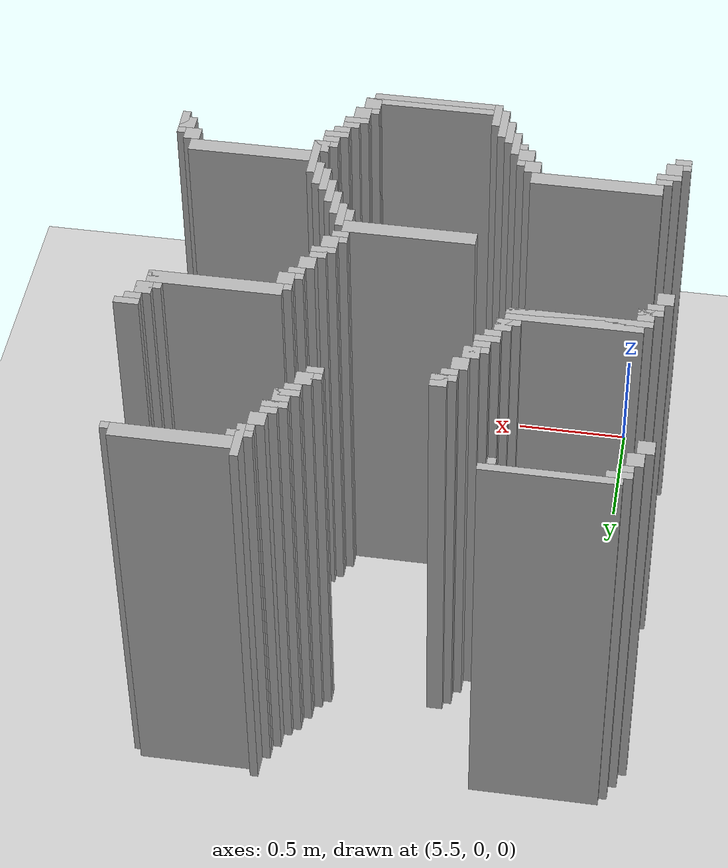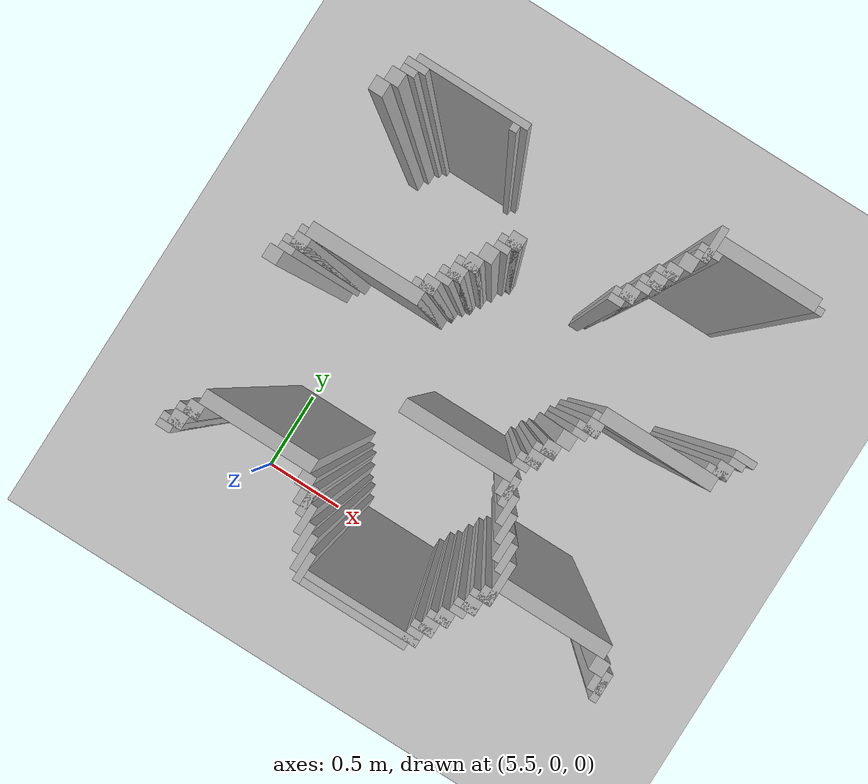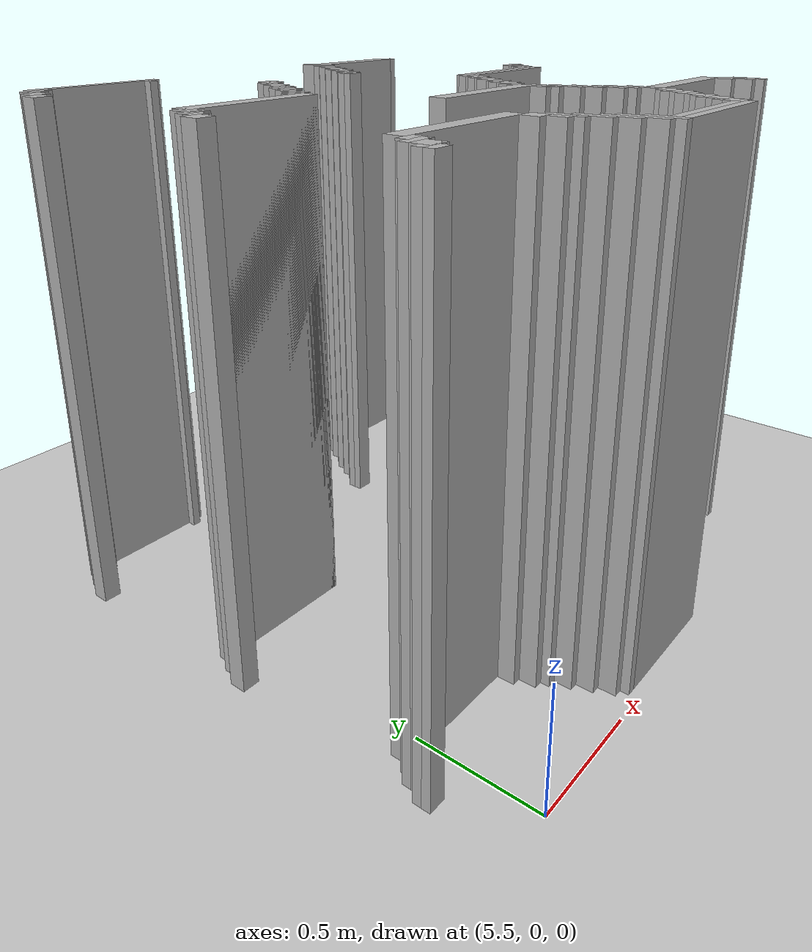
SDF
<sdf version="1.6">
 <world name="slam_world">
  <model name="ground_plane">
   <static>true</static>
   <link name="link">
    <collision name="collision">
     <geometry><plane><normal>0 0 1</normal><size>100 100</size></plane></geometry>
    </collision>
    <visual name="visual">
     <geometry><plane><normal>0 0 1</normal><size>100 100</size></plane></geometry>
     <material>
      <ambient>0.8 0.8 0.8 1</ambient>
      <diffuse>0.8 0.8 0.8 1</diffuse>
      <specular>0.8 0.8 0.8 1</specular>
     </material>
    </visual>
   </link>
  </model>
  <model name="wall_5124">
   <static>true</static>
   <pose>6.8735498839907185 2.1751740139211138 1.0 0 0 0</pose>
   <link name="link">
    <collision name="collision">
     <geometry><box><size>0.03480278422273782 0.17401392111368907 2.0</size></box></geometry>
    </collision>
    <visual name="visual">
     <geometry><box><size>0.03480278422273782 0.17401392111368907 2.0</size></box></geometry>
     <material><ambient>0.5 0.5 0.5 1</ambient><diffuse>0.7 0.7 0.7 1</diffuse></material>
    </visual>
   </link>
  </model>
  <model name="wall_5139">
   <static>true</static>
   <pose>7.134570765661253 2.1925754060324825 1.0 0 0 0</pose>
   <link name="link">
    <collision name="collision">
     <geometry><box><size>0.4872389791183295 0.06960556844547564 2.0</size></box></geometry>
    </collision>
    <visual name="visual">
     <geometry><box><size>0.4872389791183295 0.06960556844547564 2.0</size></box></geometry>
     <material><ambient>0.5 0.5 0.5 1</ambient><diffuse>0.7 0.7 0.7 1</diffuse></material>
    </visual>
   </link>
  </model>
  <model name="wall_5152">
   <static>true</static>
   <pose>5.672853828306264 2.1751740139211138 1.0 0 0 0</pose>
   <link name="link">
    <collision name="collision">
     <geometry><box><size>0.5568445475638051 0.03480278422273782 2.0</size></box></geometry>
    </collision>
    <visual name="visual">
     <geometry><box><size>0.5568445475638051 0.03480278422273782 2.0</size></box></geometry>
     <material><ambient>0.5 0.5 0.5 1</ambient><diffuse>0.7 0.7 0.7 1</diffuse></material>
    </visual>
   </link>
  </model>
  <model name="wall_5153">
   <static>true</static>
   <pose>7.395591647331786 2.1751740139211138 1.0 0 0 0</pose>
   <link name="link">
    <collision name="collision">
     <geometry><box><size>0.03480278422273782 0.03480278422273782 2.0</size></box></geometry>
    </collision>
    <visual name="visual">
     <geometry><box><size>0.03480278422273782 0.03480278422273782 2.0</size></box></geometry>
     <material><ambient>0.5 0.5 0.5 1</ambient><diffuse>0.7 0.7 0.7 1</diffuse></material>
    </visual>
   </link>
  </model>
  <model name="wall_5166">
   <static>true</static>
   <pose>5.41183294663573 2.140371229698376 1.0 0 0 0</pose>
   <link name="link">
    <collision name="collision">
     <geometry><box><size>0.10440835266821345 0.03480278422273782 2.0</size></box></geometry>
    </collision>
    <visual name="visual">
     <geometry><box><size>0.10440835266821345 0.03480278422273782 2.0</size></box></geometry>
     <material><ambient>0.5 0.5 0.5 1</ambient><diffuse>0.7 0.7 0.7 1</diffuse></material>
    </visual>
   </link>
  </model>
  <model name="wall_5167">
   <static>true</static>
   <pose>5.89907192575406 2.140371229698376 1.0 0 0 0</pose>
   <link name="link">
    <collision name="collision">
     <geometry><box><size>0.03480278422273782 0.03480278422273782 2.0</size></box></geometry>
    </collision>
    <visual name="visual">
     <geometry><box><size>0.03480278422273782 0.03480278422273782 2.0</size></box></geometry>
     <material><ambient>0.5 0.5 0.5 1</ambient><diffuse>0.7 0.7 0.7 1</diffuse></material>
    </visual>
   </link>
  </model>
  <model name="wall_5168">
   <static>true</static>
   <pose>6.8735498839907185 2.140371229698376 1.0 0 0 0</pose>
   <link name="link">
    <collision name="collision">
     <geometry><box><size>0.10440835266821345 0.03480278422273782 2.0</size></box></geometry>
    </collision>
    <visual name="visual">
     <geometry><box><size>0.10440835266821345 0.03480278422273782 2.0</size></box></geometry>
     <material><ambient>0.5 0.5 0.5 1</ambient><diffuse>0.7 0.7 0.7 1</diffuse></material>
    </visual>
   </link>
  </model>
  <model name="wall_5183">
   <static>true</static>
   <pose>5.3944315545243615 2.105568445475638 1.0 0 0 0</pose>
   <link name="link">
    <collision name="collision">
     <geometry><box><size>0.06960556844547564 0.03480278422273782 2.0</size></box></geometry>
    </collision>
    <visual name="visual">
     <geometry><box><size>0.06960556844547564 0.03480278422273782 2.0</size></box></geometry>
     <material><ambient>0.5 0.5 0.5 1</ambient><diffuse>0.7 0.7 0.7 1</diffuse></material>
    </visual>
   </link>
  </model>
  <model name="wall_5184">
   <static>true</static>
   <pose>6.85614849187935 2.105568445475638 1.0 0 0 0</pose>
   <link name="link">
    <collision name="collision">
     <geometry><box><size>0.06960556844547564 0.03480278422273782 2.0</size></box></geometry>
    </collision>
    <visual name="visual">
     <geometry><box><size>0.06960556844547564 0.03480278422273782 2.0</size></box></geometry>
     <material><ambient>0.5 0.5 0.5 1</ambient><diffuse>0.7 0.7 0.7 1</diffuse></material>
    </visual>
   </link>
  </model>
  <model name="wall_5198">
   <static>true</static>
   <pose>5.359628770301624 2.053364269141531 1.0 0 0 0</pose>
   <link name="link">
    <collision name="collision">
     <geometry><box><size>0.06960556844547564 0.06960556844547564 2.0</size></box></geometry>
    </collision>
    <visual name="visual">
     <geometry><box><size>0.06960556844547564 0.06960556844547564 2.0</size></box></geometry>
     <material><ambient>0.5 0.5 0.5 1</ambient><diffuse>0.7 0.7 0.7 1</diffuse></material>
    </visual>
   </link>
  </model>
  <model name="wall_5199">
   <static>true</static>
   <pose>6.821345707656612 2.053364269141531 1.0 0 0 0</pose>
   <link name="link">
    <collision name="collision">
     <geometry><box><size>0.06960556844547564 0.06960556844547564 2.0</size></box></geometry>
    </collision>
    <visual name="visual">
     <geometry><box><size>0.06960556844547564 0.06960556844547564 2.0</size></box></geometry>
     <material><ambient>0.5 0.5 0.5 1</ambient><diffuse>0.7 0.7 0.7 1</diffuse></material>
    </visual>
   </link>
  </model>
  <model name="wall_5213">
   <static>true</static>
   <pose>5.324825986078886 1.9837587006960555 1.0 0 0 0</pose>
   <link name="link">
    <collision name="collision">
     <geometry><box><size>0.06960556844547564 0.06960556844547564 2.0</size></box></geometry>
    </collision>
    <visual name="visual">
     <geometry><box><size>0.06960556844547564 0.06960556844547564 2.0</size></box></geometry>
     <material><ambient>0.5 0.5 0.5 1</ambient><diffuse>0.7 0.7 0.7 1</diffuse></material>
    </visual>
   </link>
  </model>
  <model name="wall_5214">
   <static>true</static>
   <pose>6.786542923433874 1.9837587006960555 1.0 0 0 0</pose>
   <link name="link">
    <collision name="collision">
     <geometry><box><size>0.06960556844547564 0.06960556844547564 2.0</size></box></geometry>
    </collision>
    <visual name="visual">
     <geometry><box><size>0.06960556844547564 0.06960556844547564 2.0</size></box></geometry>
     <material><ambient>0.5 0.5 0.5 1</ambient><diffuse>0.7 0.7 0.7 1</diffuse></material>
    </visual>
   </link>
  </model>
  <model name="wall_5229">
   <static>true</static>
   <pose>6.769141531322505 1.9663573085846866 1.0 0 0 0</pose>
   <link name="link">
    <collision name="collision">
     <geometry><box><size>0.10440835266821345 0.03480278422273782 2.0</size></box></geometry>
    </collision>
    <visual name="visual">
     <geometry><box><size>0.10440835266821345 0.03480278422273782 2.0</size></box></geometry>
     <material><ambient>0.5 0.5 0.5 1</ambient><diffuse>0.7 0.7 0.7 1</diffuse></material>
    </visual>
   </link>
  </model>
  <model name="wall_5241">
   <static>true</static>
   <pose>6.751740139211137 1.91415313225058 1.0 0 0 0</pose>
   <link name="link">
    <collision name="collision">
     <geometry><box><size>0.06960556844547564 0.06960556844547564 2.0</size></box></geometry>
    </collision>
    <visual name="visual">
     <geometry><box><size>0.06960556844547564 0.06960556844547564 2.0</size></box></geometry>
     <material><ambient>0.5 0.5 0.5 1</ambient><diffuse>0.7 0.7 0.7 1</diffuse></material>
    </visual>
   </link>
  </model>
  <model name="wall_5254">
   <static>true</static>
   <pose>6.734338747099768 1.896751740139211 1.0 0 0 0</pose>
   <link name="link">
    <collision name="collision">
     <geometry><box><size>0.10440835266821345 0.03480278422273782 2.0</size></box></geometry>
    </collision>
    <visual name="visual">
     <geometry><box><size>0.10440835266821345 0.03480278422273782 2.0</size></box></geometry>
     <material><ambient>0.5 0.5 0.5 1</ambient><diffuse>0.7 0.7 0.7 1</diffuse></material>
    </visual>
   </link>
  </model>
  <model name="wall_5266">
   <static>true</static>
   <pose>6.716937354988398 1.8619489559164732 1.0 0 0 0</pose>
   <link name="link">
    <collision name="collision">
     <geometry><box><size>0.06960556844547564 0.03480278422273782 2.0</size></box></geometry>
    </collision>
    <visual name="visual">
     <geometry><box><size>0.06960556844547564 0.03480278422273782 2.0</size></box></geometry>
     <material><ambient>0.5 0.5 0.5 1</ambient><diffuse>0.7 0.7 0.7 1</diffuse></material>
    </visual>
   </link>
  </model>
  <model name="wall_5278">
   <static>true</static>
   <pose>6.682134570765661 1.8097447795823665 1.0 0 0 0</pose>
   <link name="link">
    <collision name="collision">
     <geometry><box><size>0.06960556844547564 0.06960556844547564 2.0</size></box></geometry>
    </collision>
    <visual name="visual">
     <geometry><box><size>0.06960556844547564 0.06960556844547564 2.0</size></box></geometry>
     <material><ambient>0.5 0.5 0.5 1</ambient><diffuse>0.7 0.7 0.7 1</diffuse></material>
    </visual>
   </link>
  </model>
  <model name="wall_5293">
   <static>true</static>
   <pose>6.664733178654292 1.7923433874709975 1.0 0 0 0</pose>
   <link name="link">
    <collision name="collision">
     <geometry><box><size>0.10440835266821345 0.03480278422273782 2.0</size></box></geometry>
    </collision>
    <visual name="visual">
     <geometry><box><size>0.10440835266821345 0.03480278422273782 2.0</size></box></geometry>
     <material><ambient>0.5 0.5 0.5 1</ambient><diffuse>0.7 0.7 0.7 1</diffuse></material>
    </visual>
   </link>
  </model>
  <model name="wall_5306">
   <static>true</static>
   <pose>6.1600928074245935 1.740139211136891 1.0 0 0 0</pose>
   <link name="link">
    <collision name="collision">
     <geometry><box><size>0.06960556844547564 0.06960556844547564 2.0</size></box></geometry>
    </collision>
    <visual name="visual">
     <geometry><box><size>0.06960556844547564 0.06960556844547564 2.0</size></box></geometry>
     <material><ambient>0.5 0.5 0.5 1</ambient><diffuse>0.7 0.7 0.7 1</diffuse></material>
    </visual>
   </link>
  </model>
  <model name="wall_5307">
   <static>true</static>
   <pose>6.647331786542924 1.75754060324826 1.0 0 0 0</pose>
   <link name="link">
    <collision name="collision">
     <geometry><box><size>0.06960556844547564 0.03480278422273782 2.0</size></box></geometry>
    </collision>
    <visual name="visual">
     <geometry><box><size>0.06960556844547564 0.03480278422273782 2.0</size></box></geometry>
     <material><ambient>0.5 0.5 0.5 1</ambient><diffuse>0.7 0.7 0.7 1</diffuse></material>
    </visual>
   </link>
  </model>
  <model name="wall_5319">
   <static>true</static>
   <pose>6.142691415313225 1.722737819025522 1.0 0 0 0</pose>
   <link name="link">
    <collision name="collision">
     <geometry><box><size>0.10440835266821345 0.03480278422273782 2.0</size></box></geometry>
    </collision>
    <visual name="visual">
     <geometry><box><size>0.10440835266821345 0.03480278422273782 2.0</size></box></geometry>
     <material><ambient>0.5 0.5 0.5 1</ambient><diffuse>0.7 0.7 0.7 1</diffuse></material>
    </visual>
   </link>
  </model>
  <model name="wall_5331">
   <static>true</static>
   <pose>6.125290023201856 1.6879350348027842 1.0 0 0 0</pose>
   <link name="link">
    <collision name="collision">
     <geometry><box><size>0.06960556844547564 0.03480278422273782 2.0</size></box></geometry>
    </collision>
    <visual name="visual">
     <geometry><box><size>0.06960556844547564 0.03480278422273782 2.0</size></box></geometry>
     <material><ambient>0.5 0.5 0.5 1</ambient><diffuse>0.7 0.7 0.7 1</diffuse></material>
    </visual>
   </link>
  </model>
  <model name="wall_5344">
   <static>true</static>
   <pose>6.090487238979118 1.6357308584686774 1.0 0 0 0</pose>
   <link name="link">
    <collision name="collision">
     <geometry><box><size>0.06960556844547564 0.06960556844547564 2.0</size></box></geometry>
    </collision>
    <visual name="visual">
     <geometry><box><size>0.06960556844547564 0.06960556844547564 2.0</size></box></geometry>
     <material><ambient>0.5 0.5 0.5 1</ambient><diffuse>0.7 0.7 0.7 1</diffuse></material>
    </visual>
   </link>
  </model>
  <model name="wall_5357">
   <static>true</static>
   <pose>6.05568445475638 1.5661252900232019 1.0 0 0 0</pose>
   <link name="link">
    <collision name="collision">
     <geometry><box><size>0.06960556844547564 0.06960556844547564 2.0</size></box></geometry>
    </collision>
    <visual name="visual">
     <geometry><box><size>0.06960556844547564 0.06960556844547564 2.0</size></box></geometry>
     <material><ambient>0.5 0.5 0.5 1</ambient><diffuse>0.7 0.7 0.7 1</diffuse></material>
    </visual>
   </link>
  </model>
  <model name="wall_5370">
   <static>true</static>
   <pose>6.038283062645012 1.548723897911833 1.0 0 0 0</pose>
   <link name="link">
    <collision name="collision">
     <geometry><box><size>0.10440835266821345 0.03480278422273782 2.0</size></box></geometry>
    </collision>
    <visual name="visual">
     <geometry><box><size>0.10440835266821345 0.03480278422273782 2.0</size></box></geometry>
     <material><ambient>0.5 0.5 0.5 1</ambient><diffuse>0.7 0.7 0.7 1</diffuse></material>
    </visual>
   </link>
  </model>
  <model name="wall_5381">
   <static>true</static>
   <pose>6.020881670533642 1.4965197215777262 1.0 0 0 0</pose>
   <link name="link">
    <collision name="collision">
     <geometry><box><size>0.06960556844547564 0.06960556844547564 2.0</size></box></geometry>
    </collision>
    <visual name="visual">
     <geometry><box><size>0.06960556844547564 0.06960556844547564 2.0</size></box></geometry>
     <material><ambient>0.5 0.5 0.5 1</ambient><diffuse>0.7 0.7 0.7 1</diffuse></material>
    </visual>
   </link>
  </model>
  <model name="wall_5392">
   <static>true</static>
   <pose>6.003480278422273 1.4791183294663572 1.0 0 0 0</pose>
   <link name="link">
    <collision name="collision">
     <geometry><box><size>0.10440835266821345 0.03480278422273782 2.0</size></box></geometry>
    </collision>
    <visual name="visual">
     <geometry><box><size>0.10440835266821345 0.03480278422273782 2.0</size></box></geometry>
     <material><ambient>0.5 0.5 0.5 1</ambient><diffuse>0.7 0.7 0.7 1</diffuse></material>
    </visual>
   </link>
  </model>
  <model name="wall_5393">
   <static>true</static>
   <pose>7.465197215777262 1.4791183294663572 1.0 0 0 0</pose>
   <link name="link">
    <collision name="collision">
     <geometry><box><size>0.10440835266821345 0.03480278422273782 2.0</size></box></geometry>
    </collision>
    <visual name="visual">
     <geometry><box><size>0.10440835266821345 0.03480278422273782 2.0</size></box></geometry>
     <material><ambient>0.5 0.5 0.5 1</ambient><diffuse>0.7 0.7 0.7 1</diffuse></material>
    </visual>
   </link>
  </model>
  <model name="wall_5403">
   <static>true</static>
   <pose>5.986078886310905 1.4443155452436194 1.0 0 0 0</pose>
   <link name="link">
    <collision name="collision">
     <geometry><box><size>0.06960556844547564 0.03480278422273782 2.0</size></box></geometry>
    </collision>
    <visual name="visual">
     <geometry><box><size>0.06960556844547564 0.03480278422273782 2.0</size></box></geometry>
     <material><ambient>0.5 0.5 0.5 1</ambient><diffuse>0.7 0.7 0.7 1</diffuse></material>
    </visual>
   </link>
  </model>
  <model name="wall_5404">
   <static>true</static>
   <pose>7.447795823665893 1.4443155452436194 1.0 0 0 0</pose>
   <link name="link">
    <collision name="collision">
     <geometry><box><size>0.06960556844547564 0.03480278422273782 2.0</size></box></geometry>
    </collision>
    <visual name="visual">
     <geometry><box><size>0.06960556844547564 0.03480278422273782 2.0</size></box></geometry>
     <material><ambient>0.5 0.5 0.5 1</ambient><diffuse>0.7 0.7 0.7 1</diffuse></material>
    </visual>
   </link>
  </model>
  <model name="wall_5412">
   <static>true</static>
   <pose>5.951276102088166 1.3921113689095126 1.0 0 0 0</pose>
   <link name="link">
    <collision name="collision">
     <geometry><box><size>0.06960556844547564 0.06960556844547564 2.0</size></box></geometry>
    </collision>
    <visual name="visual">
     <geometry><box><size>0.06960556844547564 0.06960556844547564 2.0</size></box></geometry>
     <material><ambient>0.5 0.5 0.5 1</ambient><diffuse>0.7 0.7 0.7 1</diffuse></material>
    </visual>
   </link>
  </model>
  <model name="wall_5413">
   <static>true</static>
   <pose>7.412993039443156 1.3921113689095126 1.0 0 0 0</pose>
   <link name="link">
    <collision name="collision">
     <geometry><box><size>0.06960556844547564 0.06960556844547564 2.0</size></box></geometry>
    </collision>
    <visual name="visual">
     <geometry><box><size>0.06960556844547564 0.06960556844547564 2.0</size></box></geometry>
     <material><ambient>0.5 0.5 0.5 1</ambient><diffuse>0.7 0.7 0.7 1</diffuse></material>
    </visual>
   </link>
  </model>
  <model name="wall_5423">
   <static>true</static>
   <pose>5.933874709976798 1.3747099767981439 1.0 0 0 0</pose>
   <link name="link">
    <collision name="collision">
     <geometry><box><size>0.10440835266821345 0.03480278422273782 2.0</size></box></geometry>
    </collision>
    <visual name="visual">
     <geometry><box><size>0.10440835266821345 0.03480278422273782 2.0</size></box></geometry>
     <material><ambient>0.5 0.5 0.5 1</ambient><diffuse>0.7 0.7 0.7 1</diffuse></material>
    </visual>
   </link>
  </model>
  <model name="wall_5424">
   <static>true</static>
   <pose>7.395591647331786 1.3747099767981439 1.0 0 0 0</pose>
   <link name="link">
    <collision name="collision">
     <geometry><box><size>0.10440835266821345 0.03480278422273782 2.0</size></box></geometry>
    </collision>
    <visual name="visual">
     <geometry><box><size>0.10440835266821345 0.03480278422273782 2.0</size></box></geometry>
     <material><ambient>0.5 0.5 0.5 1</ambient><diffuse>0.7 0.7 0.7 1</diffuse></material>
    </visual>
   </link>
  </model>
  <model name="wall_5435">
   <static>true</static>
   <pose>5.672853828306264 1.322505800464037 1.0 0 0 0</pose>
   <link name="link">
    <collision name="collision">
     <geometry><box><size>0.5568445475638051 0.06960556844547564 2.0</size></box></geometry>
    </collision>
    <visual name="visual">
     <geometry><box><size>0.5568445475638051 0.06960556844547564 2.0</size></box></geometry>
     <material><ambient>0.5 0.5 0.5 1</ambient><diffuse>0.7 0.7 0.7 1</diffuse></material>
    </visual>
   </link>
  </model>
  <model name="wall_5436">
   <static>true</static>
   <pose>7.134570765661253 1.322505800464037 1.0 0 0 0</pose>
   <link name="link">
    <collision name="collision">
     <geometry><box><size>0.5568445475638051 0.06960556844547564 2.0</size></box></geometry>
    </collision>
    <visual name="visual">
     <geometry><box><size>0.5568445475638051 0.06960556844547564 2.0</size></box></geometry>
     <material><ambient>0.5 0.5 0.5 1</ambient><diffuse>0.7 0.7 0.7 1</diffuse></material>
    </visual>
   </link>
  </model>
  <model name="wall_5447">
   <static>true</static>
   <pose>5.655452436194896 1.3051044083526682 1.0 0 0 0</pose>
   <link name="link">
    <collision name="collision">
     <geometry><box><size>0.5916473317865429 0.03480278422273782 2.0</size></box></geometry>
    </collision>
    <visual name="visual">
     <geometry><box><size>0.5916473317865429 0.03480278422273782 2.0</size></box></geometry>
     <material><ambient>0.5 0.5 0.5 1</ambient><diffuse>0.7 0.7 0.7 1</diffuse></material>
    </visual>
   </link>
  </model>
  <model name="wall_5448">
   <static>true</static>
   <pose>7.117169373549884 1.3051044083526682 1.0 0 0 0</pose>
   <link name="link">
    <collision name="collision">
     <geometry><box><size>0.5916473317865429 0.03480278422273782 2.0</size></box></geometry>
    </collision>
    <visual name="visual">
     <geometry><box><size>0.5916473317865429 0.03480278422273782 2.0</size></box></geometry>
     <material><ambient>0.5 0.5 0.5 1</ambient><diffuse>0.7 0.7 0.7 1</diffuse></material>
    </visual>
   </link>
  </model>
  <model name="wall_5461">
   <static>true</static>
   <pose>5.3944315545243615 1.2529002320185614 1.0 0 0 0</pose>
   <link name="link">
    <collision name="collision">
     <geometry><box><size>0.06960556844547564 0.06960556844547564 2.0</size></box></geometry>
    </collision>
    <visual name="visual">
     <geometry><box><size>0.06960556844547564 0.06960556844547564 2.0</size></box></geometry>
     <material><ambient>0.5 0.5 0.5 1</ambient><diffuse>0.7 0.7 0.7 1</diffuse></material>
    </visual>
   </link>
  </model>
  <model name="wall_5462">
   <static>true</static>
   <pose>6.85614849187935 1.2529002320185614 1.0 0 0 0</pose>
   <link name="link">
    <collision name="collision">
     <geometry><box><size>0.06960556844547564 0.06960556844547564 2.0</size></box></geometry>
    </collision>
    <visual name="visual">
     <geometry><box><size>0.06960556844547564 0.06960556844547564 2.0</size></box></geometry>
     <material><ambient>0.5 0.5 0.5 1</ambient><diffuse>0.7 0.7 0.7 1</diffuse></material>
    </visual>
   </link>
  </model>
  <model name="wall_5476">
   <static>true</static>
   <pose>5.377030162412993 1.2354988399071924 1.0 0 0 0</pose>
   <link name="link">
    <collision name="collision">
     <geometry><box><size>0.10440835266821345 0.03480278422273782 2.0</size></box></geometry>
    </collision>
    <visual name="visual">
     <geometry><box><size>0.10440835266821345 0.03480278422273782 2.0</size></box></geometry>
     <material><ambient>0.5 0.5 0.5 1</ambient><diffuse>0.7 0.7 0.7 1</diffuse></material>
    </visual>
   </link>
  </model>
  <model name="wall_5477">
   <static>true</static>
   <pose>6.838747099767981 1.2354988399071924 1.0 0 0 0</pose>
   <link name="link">
    <collision name="collision">
     <geometry><box><size>0.10440835266821345 0.03480278422273782 2.0</size></box></geometry>
    </collision>
    <visual name="visual">
     <geometry><box><size>0.10440835266821345 0.03480278422273782 2.0</size></box></geometry>
     <material><ambient>0.5 0.5 0.5 1</ambient><diffuse>0.7 0.7 0.7 1</diffuse></material>
    </visual>
   </link>
  </model>
  <model name="wall_5490">
   <static>true</static>
   <pose>5.359628770301624 1.2006960556844548 1.0 0 0 0</pose>
   <link name="link">
    <collision name="collision">
     <geometry><box><size>0.06960556844547564 0.03480278422273782 2.0</size></box></geometry>
    </collision>
    <visual name="visual">
     <geometry><box><size>0.06960556844547564 0.03480278422273782 2.0</size></box></geometry>
     <material><ambient>0.5 0.5 0.5 1</ambient><diffuse>0.7 0.7 0.7 1</diffuse></material>
    </visual>
   </link>
  </model>
  <model name="wall_5491">
   <static>true</static>
   <pose>6.821345707656612 1.2006960556844548 1.0 0 0 0</pose>
   <link name="link">
    <collision name="collision">
     <geometry><box><size>0.06960556844547564 0.03480278422273782 2.0</size></box></geometry>
    </collision>
    <visual name="visual">
     <geometry><box><size>0.06960556844547564 0.03480278422273782 2.0</size></box></geometry>
     <material><ambient>0.5 0.5 0.5 1</ambient><diffuse>0.7 0.7 0.7 1</diffuse></material>
    </visual>
   </link>
  </model>
  <model name="wall_5503">
   <static>true</static>
   <pose>5.324825986078886 1.148491879350348 1.0 0 0 0</pose>
   <link name="link">
    <collision name="collision">
     <geometry><box><size>0.06960556844547564 0.06960556844547564 2.0</size></box></geometry>
    </collision>
    <visual name="visual">
     <geometry><box><size>0.06960556844547564 0.06960556844547564 2.0</size></box></geometry>
     <material><ambient>0.5 0.5 0.5 1</ambient><diffuse>0.7 0.7 0.7 1</diffuse></material>
    </visual>
   </link>
  </model>
  <model name="wall_5504">
   <static>true</static>
   <pose>6.786542923433874 1.148491879350348 1.0 0 0 0</pose>
   <link name="link">
    <collision name="collision">
     <geometry><box><size>0.06960556844547564 0.06960556844547564 2.0</size></box></geometry>
    </collision>
    <visual name="visual">
     <geometry><box><size>0.06960556844547564 0.06960556844547564 2.0</size></box></geometry>
     <material><ambient>0.5 0.5 0.5 1</ambient><diffuse>0.7 0.7 0.7 1</diffuse></material>
    </visual>
   </link>
  </model>
  <model name="wall_5519">
   <static>true</static>
   <pose>6.751740139211137 1.0788863109048723 1.0 0 0 0</pose>
   <link name="link">
    <collision name="collision">
     <geometry><box><size>0.06960556844547564 0.06960556844547564 2.0</size></box></geometry>
    </collision>
    <visual name="visual">
     <geometry><box><size>0.06960556844547564 0.06960556844547564 2.0</size></box></geometry>
     <material><ambient>0.5 0.5 0.5 1</ambient><diffuse>0.7 0.7 0.7 1</diffuse></material>
    </visual>
   </link>
  </model>
  <model name="wall_5534">
   <static>true</static>
   <pose>6.734338747099768 1.0614849187935034 1.0 0 0 0</pose>
   <link name="link">
    <collision name="collision">
     <geometry><box><size>0.10440835266821345 0.03480278422273782 2.0</size></box></geometry>
    </collision>
    <visual name="visual">
     <geometry><box><size>0.10440835266821345 0.03480278422273782 2.0</size></box></geometry>
     <material><ambient>0.5 0.5 0.5 1</ambient><diffuse>0.7 0.7 0.7 1</diffuse></material>
    </visual>
   </link>
  </model>
  <model name="wall_5546">
   <static>true</static>
   <pose>6.716937354988398 1.0092807424593968 1.0 0 0 0</pose>
   <link name="link">
    <collision name="collision">
     <geometry><box><size>0.06960556844547564 0.06960556844547564 2.0</size></box></geometry>
    </collision>
    <visual name="visual">
     <geometry><box><size>0.06960556844547564 0.06960556844547564 2.0</size></box></geometry>
     <material><ambient>0.5 0.5 0.5 1</ambient><diffuse>0.7 0.7 0.7 1</diffuse></material>
    </visual>
   </link>
  </model>
  <model name="wall_5558">
   <static>true</static>
   <pose>6.69953596287703 0.9918793503480278 1.0 0 0 0</pose>
   <link name="link">
    <collision name="collision">
     <geometry><box><size>0.10440835266821345 0.03480278422273782 2.0</size></box></geometry>
    </collision>
    <visual name="visual">
     <geometry><box><size>0.10440835266821345 0.03480278422273782 2.0</size></box></geometry>
     <material><ambient>0.5 0.5 0.5 1</ambient><diffuse>0.7 0.7 0.7 1</diffuse></material>
    </visual>
   </link>
  </model>
  <model name="wall_5570">
   <static>true</static>
   <pose>6.682134570765661 0.95707656612529 1.0 0 0 0</pose>
   <link name="link">
    <collision name="collision">
     <geometry><box><size>0.06960556844547564 0.03480278422273782 2.0</size></box></geometry>
    </collision>
    <visual name="visual">
     <geometry><box><size>0.06960556844547564 0.03480278422273782 2.0</size></box></geometry>
     <material><ambient>0.5 0.5 0.5 1</ambient><diffuse>0.7 0.7 0.7 1</diffuse></material>
    </visual>
   </link>
  </model>
  <model name="wall_5580">
   <static>true</static>
   <pose>6.403712296983758 0.9048723897911832 1.0 0 0 0</pose>
   <link name="link">
    <collision name="collision">
     <geometry><box><size>0.5568445475638051 0.06960556844547564 2.0</size></box></geometry>
    </collision>
    <visual name="visual">
     <geometry><box><size>0.5568445475638051 0.06960556844547564 2.0</size></box></geometry>
     <material><ambient>0.5 0.5 0.5 1</ambient><diffuse>0.7 0.7 0.7 1</diffuse></material>
    </visual>
   </link>
  </model>
  <model name="wall_5590">
   <static>true</static>
   <pose>6.69953596287703 0.8352668213457076 1.0 0 0 0</pose>
   <link name="link">
    <collision name="collision">
     <geometry><box><size>0.03480278422273782 0.13921113689095127 2.0</size></box></geometry>
    </collision>
    <visual name="visual">
     <geometry><box><size>0.03480278422273782 0.13921113689095127 2.0</size></box></geometry>
     <material><ambient>0.5 0.5 0.5 1</ambient><diffuse>0.7 0.7 0.7 1</diffuse></material>
    </visual>
   </link>
  </model>
  <model name="wall_5597">
   <static>true</static>
   <pose>6.682134570765661 0.8352668213457076 1.0 0 0 0</pose>
   <link name="link">
    <collision name="collision">
     <geometry><box><size>0.06960556844547564 0.06960556844547564 2.0</size></box></geometry>
    </collision>
    <visual name="visual">
     <geometry><box><size>0.06960556844547564 0.06960556844547564 2.0</size></box></geometry>
     <material><ambient>0.5 0.5 0.5 1</ambient><diffuse>0.7 0.7 0.7 1</diffuse></material>
    </visual>
   </link>
  </model>
  <model name="wall_5604">
   <static>true</static>
   <pose>6.734338747099768 0.765661252900232 1.0 0 0 0</pose>
   <link name="link">
    <collision name="collision">
     <geometry><box><size>0.03480278422273782 0.13921113689095127 2.0</size></box></geometry>
    </collision>
    <visual name="visual">
     <geometry><box><size>0.03480278422273782 0.13921113689095127 2.0</size></box></geometry>
     <material><ambient>0.5 0.5 0.5 1</ambient><diffuse>0.7 0.7 0.7 1</diffuse></material>
    </visual>
   </link>
  </model>
  <model name="wall_5615">
   <static>true</static>
   <pose>6.769141531322505 0.6960556844547563 1.0 0 0 0</pose>
   <link name="link">
    <collision name="collision">
     <geometry><box><size>0.03480278422273782 0.13921113689095127 2.0</size></box></geometry>
    </collision>
    <visual name="visual">
     <geometry><box><size>0.03480278422273782 0.13921113689095127 2.0</size></box></geometry>
     <material><ambient>0.5 0.5 0.5 1</ambient><diffuse>0.7 0.7 0.7 1</diffuse></material>
    </visual>
   </link>
  </model>
  <model name="wall_5622">
   <static>true</static>
   <pose>6.803944315545244 0.6264501160092807 1.0 0 0 0</pose>
   <link name="link">
    <collision name="collision">
     <geometry><box><size>0.03480278422273782 0.13921113689095127 2.0</size></box></geometry>
    </collision>
    <visual name="visual">
     <geometry><box><size>0.03480278422273782 0.13921113689095127 2.0</size></box></geometry>
     <material><ambient>0.5 0.5 0.5 1</ambient><diffuse>0.7 0.7 0.7 1</diffuse></material>
    </visual>
   </link>
  </model>
  <model name="wall_5629">
   <static>true</static>
   <pose>6.838747099767981 0.5916473317865429 1.0 0 0 0</pose>
   <link name="link">
    <collision name="collision">
     <geometry><box><size>0.03480278422273782 0.13921113689095127 2.0</size></box></geometry>
    </collision>
    <visual name="visual">
     <geometry><box><size>0.03480278422273782 0.13921113689095127 2.0</size></box></geometry>
     <material><ambient>0.5 0.5 0.5 1</ambient><diffuse>0.7 0.7 0.7 1</diffuse></material>
    </visual>
   </link>
  </model>
  <model name="wall_5640">
   <static>true</static>
   <pose>6.8735498839907185 0.4872389791183295 1.0 0 0 0</pose>
   <link name="link">
    <collision name="collision">
     <geometry><box><size>0.03480278422273782 0.2088167053364269 2.0</size></box></geometry>
    </collision>
    <visual name="visual">
     <geometry><box><size>0.03480278422273782 0.2088167053364269 2.0</size></box></geometry>
     <material><ambient>0.5 0.5 0.5 1</ambient><diffuse>0.7 0.7 0.7 1</diffuse></material>
    </visual>
   </link>
  </model>
  <model name="wall_5653">
   <static>true</static>
   <pose>5.672853828306264 0.4872389791183295 1.0 0 0 0</pose>
   <link name="link">
    <collision name="collision">
     <geometry><box><size>0.5568445475638051 0.06960556844547564 2.0</size></box></geometry>
    </collision>
    <visual name="visual">
     <geometry><box><size>0.5568445475638051 0.06960556844547564 2.0</size></box></geometry>
     <material><ambient>0.5 0.5 0.5 1</ambient><diffuse>0.7 0.7 0.7 1</diffuse></material>
    </visual>
   </link>
  </model>
  <model name="wall_5654">
   <static>true</static>
   <pose>7.151972157772621 0.4872389791183295 1.0 0 0 0</pose>
   <link name="link">
    <collision name="collision">
     <geometry><box><size>0.5220417633410672 0.06960556844547564 2.0</size></box></geometry>
    </collision>
    <visual name="visual">
     <geometry><box><size>0.5220417633410672 0.06960556844547564 2.0</size></box></geometry>
     <material><ambient>0.5 0.5 0.5 1</ambient><diffuse>0.7 0.7 0.7 1</diffuse></material>
    </visual>
   </link>
  </model>
  <model name="wall_5667">
   <static>true</static>
   <pose>5.3944315545243615 0.4176334106728538 1.0 0 0 0</pose>
   <link name="link">
    <collision name="collision">
     <geometry><box><size>0.06960556844547564 0.06960556844547564 2.0</size></box></geometry>
    </collision>
    <visual name="visual">
     <geometry><box><size>0.06960556844547564 0.06960556844547564 2.0</size></box></geometry>
     <material><ambient>0.5 0.5 0.5 1</ambient><diffuse>0.7 0.7 0.7 1</diffuse></material>
    </visual>
   </link>
  </model>
  <model name="wall_5668">
   <static>true</static>
   <pose>5.951276102088166 0.4176334106728538 1.0 0 0 0</pose>
   <link name="link">
    <collision name="collision">
     <geometry><box><size>0.06960556844547564 0.06960556844547564 2.0</size></box></geometry>
    </collision>
    <visual name="visual">
     <geometry><box><size>0.06960556844547564 0.06960556844547564 2.0</size></box></geometry>
     <material><ambient>0.5 0.5 0.5 1</ambient><diffuse>0.7 0.7 0.7 1</diffuse></material>
    </visual>
   </link>
  </model>
  <model name="wall_5669">
   <static>true</static>
   <pose>6.85614849187935 0.4176334106728538 1.0 0 0 0</pose>
   <link name="link">
    <collision name="collision">
     <geometry><box><size>0.06960556844547564 0.06960556844547564 2.0</size></box></geometry>
    </collision>
    <visual name="visual">
     <geometry><box><size>0.06960556844547564 0.06960556844547564 2.0</size></box></geometry>
     <material><ambient>0.5 0.5 0.5 1</ambient><diffuse>0.7 0.7 0.7 1</diffuse></material>
    </visual>
   </link>
  </model>
  <model name="wall_5670">
   <static>true</static>
   <pose>7.412993039443156 0.4176334106728538 1.0 0 0 0</pose>
   <link name="link">
    <collision name="collision">
     <geometry><box><size>0.06960556844547564 0.06960556844547564 2.0</size></box></geometry>
    </collision>
    <visual name="visual">
     <geometry><box><size>0.06960556844547564 0.06960556844547564 2.0</size></box></geometry>
     <material><ambient>0.5 0.5 0.5 1</ambient><diffuse>0.7 0.7 0.7 1</diffuse></material>
    </visual>
   </link>
  </model>
  <model name="wall_5687">
   <static>true</static>
   <pose>5.377030162412993 0.4002320185614849 1.0 0 0 0</pose>
   <link name="link">
    <collision name="collision">
     <geometry><box><size>0.10440835266821345 0.03480278422273782 2.0</size></box></geometry>
    </collision>
    <visual name="visual">
     <geometry><box><size>0.10440835266821345 0.03480278422273782 2.0</size></box></geometry>
     <material><ambient>0.5 0.5 0.5 1</ambient><diffuse>0.7 0.7 0.7 1</diffuse></material>
    </visual>
   </link>
  </model>
  <model name="wall_5688">
   <static>true</static>
   <pose>6.003480278422273 0.34802784222737815 1.0 0 0 0</pose>
   <link name="link">
    <collision name="collision">
     <geometry><box><size>0.03480278422273782 0.13921113689095127 2.0</size></box></geometry>
    </collision>
    <visual name="visual">
     <geometry><box><size>0.03480278422273782 0.13921113689095127 2.0</size></box></geometry>
     <material><ambient>0.5 0.5 0.5 1</ambient><diffuse>0.7 0.7 0.7 1</diffuse></material>
    </visual>
   </link>
  </model>
  <model name="wall_5689">
   <static>true</static>
   <pose>6.838747099767981 0.4002320185614849 1.0 0 0 0</pose>
   <link name="link">
    <collision name="collision">
     <geometry><box><size>0.10440835266821345 0.03480278422273782 2.0</size></box></geometry>
    </collision>
    <visual name="visual">
     <geometry><box><size>0.10440835266821345 0.03480278422273782 2.0</size></box></geometry>
     <material><ambient>0.5 0.5 0.5 1</ambient><diffuse>0.7 0.7 0.7 1</diffuse></material>
    </visual>
   </link>
  </model>
  <model name="wall_5690">
   <static>true</static>
   <pose>7.465197215777262 0.34802784222737815 1.0 0 0 0</pose>
   <link name="link">
    <collision name="collision">
     <geometry><box><size>0.03480278422273782 0.13921113689095127 2.0</size></box></geometry>
    </collision>
    <visual name="visual">
     <geometry><box><size>0.03480278422273782 0.13921113689095127 2.0</size></box></geometry>
     <material><ambient>0.5 0.5 0.5 1</ambient><diffuse>0.7 0.7 0.7 1</diffuse></material>
    </visual>
   </link>
  </model>
  <model name="wall_5707">
   <static>true</static>
   <pose>5.359628770301624 0.34802784222737815 1.0 0 0 0</pose>
   <link name="link">
    <collision name="collision">
     <geometry><box><size>0.06960556844547564 0.06960556844547564 2.0</size></box></geometry>
    </collision>
    <visual name="visual">
     <geometry><box><size>0.06960556844547564 0.06960556844547564 2.0</size></box></geometry>
     <material><ambient>0.5 0.5 0.5 1</ambient><diffuse>0.7 0.7 0.7 1</diffuse></material>
    </visual>
   </link>
  </model>
  <model name="wall_5708">
   <static>true</static>
   <pose>5.986078886310905 0.34802784222737815 1.0 0 0 0</pose>
   <link name="link">
    <collision name="collision">
     <geometry><box><size>0.06960556844547564 0.06960556844547564 2.0</size></box></geometry>
    </collision>
    <visual name="visual">
     <geometry><box><size>0.06960556844547564 0.06960556844547564 2.0</size></box></geometry>
     <material><ambient>0.5 0.5 0.5 1</ambient><diffuse>0.7 0.7 0.7 1</diffuse></material>
    </visual>
   </link>
  </model>
  <model name="wall_5709">
   <static>true</static>
   <pose>6.821345707656612 0.34802784222737815 1.0 0 0 0</pose>
   <link name="link">
    <collision name="collision">
     <geometry><box><size>0.06960556844547564 0.06960556844547564 2.0</size></box></geometry>
    </collision>
    <visual name="visual">
     <geometry><box><size>0.06960556844547564 0.06960556844547564 2.0</size></box></geometry>
     <material><ambient>0.5 0.5 0.5 1</ambient><diffuse>0.7 0.7 0.7 1</diffuse></material>
    </visual>
   </link>
  </model>
  <model name="wall_5710">
   <static>true</static>
   <pose>7.447795823665893 0.34802784222737815 1.0 0 0 0</pose>
   <link name="link">
    <collision name="collision">
     <geometry><box><size>0.06960556844547564 0.06960556844547564 2.0</size></box></geometry>
    </collision>
    <visual name="visual">
     <geometry><box><size>0.06960556844547564 0.06960556844547564 2.0</size></box></geometry>
     <material><ambient>0.5 0.5 0.5 1</ambient><diffuse>0.7 0.7 0.7 1</diffuse></material>
    </visual>
   </link>
  </model>
  <model name="wall_5727">
   <static>true</static>
   <pose>5.342227378190255 0.3306264501160093 1.0 0 0 0</pose>
   <link name="link">
    <collision name="collision">
     <geometry><box><size>0.10440835266821345 0.03480278422273782 2.0</size></box></geometry>
    </collision>
    <visual name="visual">
     <geometry><box><size>0.10440835266821345 0.03480278422273782 2.0</size></box></geometry>
     <material><ambient>0.5 0.5 0.5 1</ambient><diffuse>0.7 0.7 0.7 1</diffuse></material>
    </visual>
   </link>
  </model>
  <model name="wall_5728">
   <static>true</static>
   <pose>6.038283062645012 0.27842227378190254 1.0 0 0 0</pose>
   <link name="link">
    <collision name="collision">
     <geometry><box><size>0.03480278422273782 0.13921113689095127 2.0</size></box></geometry>
    </collision>
    <visual name="visual">
     <geometry><box><size>0.03480278422273782 0.13921113689095127 2.0</size></box></geometry>
     <material><ambient>0.5 0.5 0.5 1</ambient><diffuse>0.7 0.7 0.7 1</diffuse></material>
    </visual>
   </link>
  </model>
  <model name="wall_5729">
   <static>true</static>
   <pose>6.803944315545244 0.3306264501160093 1.0 0 0 0</pose>
   <link name="link">
    <collision name="collision">
     <geometry><box><size>0.10440835266821345 0.03480278422273782 2.0</size></box></geometry>
    </collision>
    <visual name="visual">
     <geometry><box><size>0.10440835266821345 0.03480278422273782 2.0</size></box></geometry>
     <material><ambient>0.5 0.5 0.5 1</ambient><diffuse>0.7 0.7 0.7 1</diffuse></material>
    </visual>
   </link>
  </model>
  <model name="wall_5743">
   <static>true</static>
   <pose>5.324825986078886 0.29582366589327147 1.0 0 0 0</pose>
   <link name="link">
    <collision name="collision">
     <geometry><box><size>0.06960556844547564 0.03480278422273782 2.0</size></box></geometry>
    </collision>
    <visual name="visual">
     <geometry><box><size>0.06960556844547564 0.03480278422273782 2.0</size></box></geometry>
     <material><ambient>0.5 0.5 0.5 1</ambient><diffuse>0.7 0.7 0.7 1</diffuse></material>
    </visual>
   </link>
  </model>
  <model name="wall_5744">
   <static>true</static>
   <pose>6.786542923433874 0.29582366589327147 1.0 0 0 0</pose>
   <link name="link">
    <collision name="collision">
     <geometry><box><size>0.06960556844547564 0.03480278422273782 2.0</size></box></geometry>
    </collision>
    <visual name="visual">
     <geometry><box><size>0.06960556844547564 0.03480278422273782 2.0</size></box></geometry>
     <material><ambient>0.5 0.5 0.5 1</ambient><diffuse>0.7 0.7 0.7 1</diffuse></material>
    </visual>
   </link>
  </model>
  <model name="wall_5758">
   <static>true</static>
   <pose>6.073085846867749 0.2088167053364269 1.0 0 0 0</pose>
   <link name="link">
    <collision name="collision">
     <geometry><box><size>0.03480278422273782 0.13921113689095127 2.0</size></box></geometry>
    </collision>
    <visual name="visual">
     <geometry><box><size>0.03480278422273782 0.13921113689095127 2.0</size></box></geometry>
     <material><ambient>0.5 0.5 0.5 1</ambient><diffuse>0.7 0.7 0.7 1</diffuse></material>
    </visual>
   </link>
  </model>
  <model name="wall_5759">
   <static>true</static>
   <pose>6.751740139211137 0.24361948955916474 1.0 0 0 0</pose>
   <link name="link">
    <collision name="collision">
     <geometry><box><size>0.06960556844547564 0.06960556844547564 2.0</size></box></geometry>
    </collision>
    <visual name="visual">
     <geometry><box><size>0.06960556844547564 0.06960556844547564 2.0</size></box></geometry>
     <material><ambient>0.5 0.5 0.5 1</ambient><diffuse>0.7 0.7 0.7 1</diffuse></material>
    </visual>
   </link>
  </model>
  <model name="wall_5778">
   <static>true</static>
   <pose>6.107888631090487 0.15661252900232017 1.0 0 0 0</pose>
   <link name="link">
    <collision name="collision">
     <geometry><box><size>0.03480278422273782 0.17401392111368907 2.0</size></box></geometry>
    </collision>
    <visual name="visual">
     <geometry><box><size>0.03480278422273782 0.17401392111368907 2.0</size></box></geometry>
     <material><ambient>0.5 0.5 0.5 1</ambient><diffuse>0.7 0.7 0.7 1</diffuse></material>
    </visual>
   </link>
  </model>
  <model name="wall_5779">
   <static>true</static>
   <pose>6.734338747099768 0.2262180974477958 1.0 0 0 0</pose>
   <link name="link">
    <collision name="collision">
     <geometry><box><size>0.10440835266821345 0.03480278422273782 2.0</size></box></geometry>
    </collision>
    <visual name="visual">
     <geometry><box><size>0.10440835266821345 0.03480278422273782 2.0</size></box></geometry>
     <material><ambient>0.5 0.5 0.5 1</ambient><diffuse>0.7 0.7 0.7 1</diffuse></material>
    </visual>
   </link>
  </model>
  <model name="wall_5794">
   <static>true</static>
   <pose>6.716937354988398 0.17401392111368907 1.0 0 0 0</pose>
   <link name="link">
    <collision name="collision">
     <geometry><box><size>0.06960556844547564 0.06960556844547564 2.0</size></box></geometry>
    </collision>
    <visual name="visual">
     <geometry><box><size>0.06960556844547564 0.06960556844547564 2.0</size></box></geometry>
     <material><ambient>0.5 0.5 0.5 1</ambient><diffuse>0.7 0.7 0.7 1</diffuse></material>
    </visual>
   </link>
  </model>
  <model name="wall_5808">
   <static>true</static>
   <pose>6.142691415313225 0.10440835266821345 1.0 0 0 0</pose>
   <link name="link">
    <collision name="collision">
     <geometry><box><size>0.03480278422273782 0.13921113689095127 2.0</size></box></geometry>
    </collision>
    <visual name="visual">
     <geometry><box><size>0.03480278422273782 0.13921113689095127 2.0</size></box></geometry>
     <material><ambient>0.5 0.5 0.5 1</ambient><diffuse>0.7 0.7 0.7 1</diffuse></material>
    </visual>
   </link>
  </model>
  <model name="wall_5809">
   <static>true</static>
   <pose>6.69953596287703 0.15661252900232017 1.0 0 0 0</pose>
   <link name="link">
    <collision name="collision">
     <geometry><box><size>0.10440835266821345 0.03480278422273782 2.0</size></box></geometry>
    </collision>
    <visual name="visual">
     <geometry><box><size>0.10440835266821345 0.03480278422273782 2.0</size></box></geometry>
     <material><ambient>0.5 0.5 0.5 1</ambient><diffuse>0.7 0.7 0.7 1</diffuse></material>
    </visual>
   </link>
  </model>
  <model name="wall_5824">
   <static>true</static>
   <pose>6.682134570765661 0.10440835266821345 1.0 0 0 0</pose>
   <link name="link">
    <collision name="collision">
     <geometry><box><size>0.06960556844547564 0.06960556844547564 2.0</size></box></geometry>
    </collision>
    <visual name="visual">
     <geometry><box><size>0.06960556844547564 0.06960556844547564 2.0</size></box></geometry>
     <material><ambient>0.5 0.5 0.5 1</ambient><diffuse>0.7 0.7 0.7 1</diffuse></material>
    </visual>
   </link>
  </model>
  <model name="wall_5834">
   <static>true</static>
   <pose>6.438515081206496 0.08700696055684454 1.0 0 0 0</pose>
   <link name="link">
    <collision name="collision">
     <geometry><box><size>0.5568445475638051 0.03480278422273782 2.0</size></box></geometry>
    </collision>
    <visual name="visual">
     <geometry><box><size>0.5568445475638051 0.03480278422273782 2.0</size></box></geometry>
     <material><ambient>0.5 0.5 0.5 1</ambient><diffuse>0.7 0.7 0.7 1</diffuse></material>
    </visual>
   </link>
  </model>
  <model name="wall_5845">
   <static>true</static>
   <pose>6.421113689095128 0.052204176334106726 1.0 0 0 0</pose>
   <link name="link">
    <collision name="collision">
     <geometry><box><size>0.5220417633410672 0.03480278422273782 2.0</size></box></geometry>
    </collision>
    <visual name="visual">
     <geometry><box><size>0.5220417633410672 0.03480278422273782 2.0</size></box></geometry>
     <material><ambient>0.5 0.5 0.5 1</ambient><diffuse>0.7 0.7 0.7 1</diffuse></material>
    </visual>
   </link>
  </model>
 </world>
</sdf>
